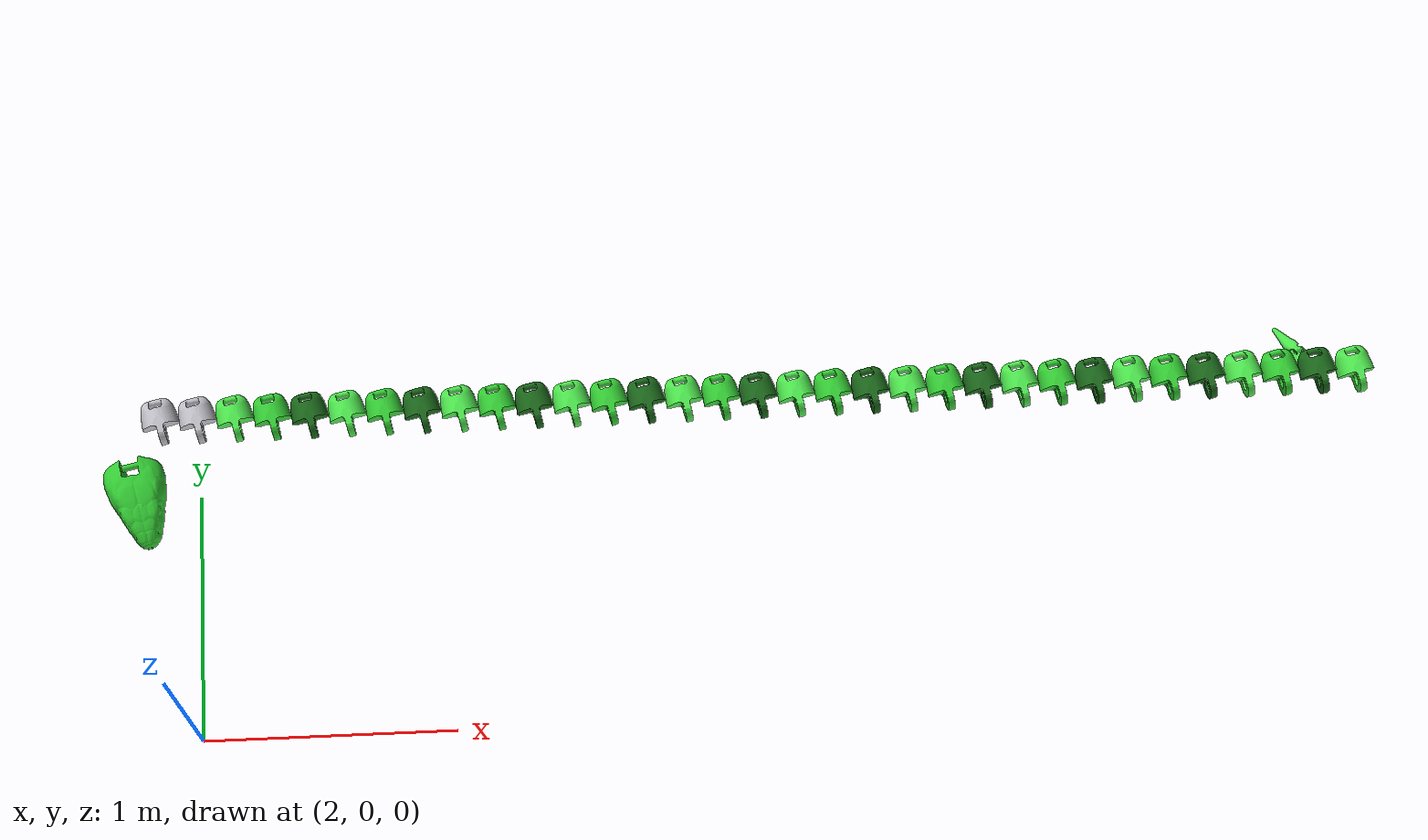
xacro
<?xml version="1.0"?>
<robot xmlns:xacro="http://www.ros.org/wiki/xacro" name="snake_robot">

  <!-- ===== Include Materials ===== -->
  <xacro:include filename="$(find snake_robot)/urdf/materials.xacro"/>

  <!-- ===== Dummy Root Link ===== -->
  <link name="world"/>

  <!-- ===== Base Link ===== -->
  <link name="base_link">
    <inertial>
      <origin xyz="0 0 0" rpy="0 0 0"/>
      <mass value="2.0"/>
      <inertia ixx="0.01" iyy="0.01" izz="0.01" ixy="0.0" ixz="0.0" iyz="0.0"/>
    </inertial>
    <visual>
      <geometry>
        <mesh filename="file://$(find snake_robot)/meshes/base_link.stl" scale="0.001 0.001 0.001"/>
      </geometry>
      <material name="snake_green"/>
    </visual>
    <collision>
      <geometry>
        <mesh filename="file://$(find snake_robot)/meshes/base_link.stl" scale="0.001 0.001 0.001"/>
      </geometry>
    </collision>
  </link>

  <joint name="world_joint" type="fixed">
    <parent link="world"/>
    <child link="base_link"/>
  </joint>

  <!-- ===== Snake Segments ===== -->
  <!-- Link 1 -->
  <link name="link1">
    <inertial>
      <origin xyz="0 0 0" rpy="0 0 0"/>
      <mass value="1.0"/>
      <inertia ixx="0.005" iyy="0.005" izz="0.005" ixy="0.0" ixz="0.0" iyz="0.0"/>
    </inertial>
    <visual>
      <geometry>
        <mesh filename="file://$(find snake_robot)/meshes/02_1.stl" scale="0.001 0.001 0.001"/>
      </geometry>
      <material name="silver"/>
    </visual>
    <collision>
      <geometry>
        <mesh filename="file://$(find snake_robot)/meshes/02_1.stl" scale="0.001 0.001 0.001"/>
      </geometry>
    </collision>
  </link>

  <joint name="joint1" type="revolute">
    <parent link="base_link"/>
    <child link="link1"/>
    <origin xyz="0.15 0 0" rpy="0 0 0"/>
    <axis xyz="0 0 1"/>
    <limit effort="10" velocity="2.0" lower="-1.57" upper="1.57"/>
    <dynamics damping="0.5" friction="0.1"/>
    <safety_controller k_position="100" k_velocity="10" soft_lower_limit="-1.5" soft_upper_limit="1.5"/>
  </joint>

  <!-- Link 2 -->
  <link name="link2">
    <inertial>
      <origin xyz="0 0 0" rpy="0 0 0"/>
      <mass value="1.0"/>
      <inertia ixx="0.005" iyy="0.005" izz="0.005" ixy="0.0" ixz="0.0" iyz="0.0"/>
    </inertial>
    <visual>
      <geometry>
        <mesh filename="file://$(find snake_robot)/meshes/02_1.stl" scale="0.001 0.001 0.001"/>
      </geometry>
      <material name="silver"/>
    </visual>
    <collision>
      <geometry>
        <mesh filename="file://$(find snake_robot)/meshes/02_1.stl" scale="0.001 0.001 0.001"/>
      </geometry>
    </collision>
  </link>

  <joint name="joint2" type="revolute">
    <parent link="link1"/>
    <child link="link2"/>
    <origin xyz="0.15 0 0" rpy="0 0 0"/>
    <axis xyz="0 0 1"/>
    <limit effort="10" velocity="2.0" lower="-1.57" upper="1.57"/>
    <dynamics damping="0.5" friction="0.1"/>
    <safety_controller k_position="100" k_velocity="10" soft_lower_limit="-1.5" soft_upper_limit="1.5"/>
  </joint>

  <!-- Remaining segments -->
  <xacro:macro name="snake_segment" params="n">
    <link name="link${n}">
      <inertial>
        <origin xyz="0 0 0" rpy="0 0 0"/>
        <mass value="1.0"/>
        <inertia ixx="0.005" iyy="0.005" izz="0.005" ixy="0.0" ixz="0.0" iyz="0.0"/>
      </inertial>
      <visual>
        <geometry>
          <mesh filename="file://$(find snake_robot)/meshes/02_1.stl" scale="0.001 0.001 0.001"/>
        </geometry>
        <xacro:if value="${n % 3 == 0}">
          <material name="snake_pattern"/>
        </xacro:if>
        <xacro:if value="${n % 3 == 1}">
          <material name="snake_green"/>
        </xacro:if>
        <xacro:if value="${n % 3 == 2}">
          <material name="snake_dark"/>
        </xacro:if>
      </visual>
      <collision>
        <geometry>
          <mesh filename="file://$(find snake_robot)/meshes/02_1.stl" scale="0.001 0.001 0.001"/>
        </geometry>
      </collision>
    </link>

    <joint name="joint${n}" type="revolute">
      <parent link="link${n - 1}"/>
      <child link="link${n}"/>
      <origin xyz="0.15 0 0" rpy="0 0 0"/>
      <axis xyz="0 0 1"/>
      <limit effort="10" velocity="2.0" lower="-1.57" upper="1.57"/>
      <dynamics damping="0.5" friction="0.1"/>
      <safety_controller k_position="100" k_velocity="10" soft_lower_limit="-1.5" soft_upper_limit="1.5"/>
    </joint>
  </xacro:macro>

  <!-- Generate segments 3 through 33 -->
  <xacro:snake_segment n="3"/>
  <xacro:snake_segment n="4"/>
  <xacro:snake_segment n="5"/>
  <xacro:snake_segment n="6"/>
  <xacro:snake_segment n="7"/>
  <xacro:snake_segment n="8"/>
  <xacro:snake_segment n="9"/>
  <xacro:snake_segment n="10"/>
  <xacro:snake_segment n="11"/>
  <xacro:snake_segment n="12"/>
  <xacro:snake_segment n="13"/>
  <xacro:snake_segment n="14"/>
  <xacro:snake_segment n="15"/>
  <xacro:snake_segment n="16"/>
  <xacro:snake_segment n="17"/>
  <xacro:snake_segment n="18"/>
  <xacro:snake_segment n="19"/>
  <xacro:snake_segment n="20"/>
  <xacro:snake_segment n="21"/>
  <xacro:snake_segment n="22"/>
  <xacro:snake_segment n="23"/>
  <xacro:snake_segment n="24"/>
  <xacro:snake_segment n="25"/>
  <xacro:snake_segment n="26"/>
  <xacro:snake_segment n="27"/>
  <xacro:snake_segment n="28"/>
  <xacro:snake_segment n="29"/>
  <xacro:snake_segment n="30"/>
  <xacro:snake_segment n="31"/>
  <xacro:snake_segment n="32"/>
  <xacro:snake_segment n="33"/>

  <!-- ===== Tail Segment ===== -->
  <link name="tail_link">
    <inertial>
      <origin xyz="0 0 0" rpy="0 0 0"/>
      <mass value="0.5"/>
      <inertia ixx="0.001" iyy="0.001" izz="0.001" ixy="0.0" ixz="0.0" iyz="0.0"/>
    </inertial>
    <visual>
      <geometry>
        <mesh filename="file://$(find snake_robot)/meshes/tail_1.stl" scale="0.001 0.001 0.001"/>
      </geometry>
      <material name="snake_pattern"/>
    </visual>
    <collision>
      <geometry>
        <mesh filename="file://$(find snake_robot)/meshes/tail_1.stl" scale="0.001 0.001 0.001"/>
      </geometry>
    </collision>
  </link>

  <joint name="joint34" type="fixed">
    <parent link="link33"/>
    <child link="tail_link"/>
    <origin xyz="0.15 0 0" rpy="0 0 0"/>
  </joint>

  <!-- ===== ROS2 Control Configuration ===== -->
  <ros2_control name="SnakeRobotSystem" type="system">
    <hardware>
      <plugin>gazebo_ros2_control/GazeboSystem</plugin>
    </hardware>

    <!-- Define command and state interfaces for all joints -->
    <joint name="joint1">
      <command_interface name="position"/>
      <state_interface name="position"/>
      <state_interface name="velocity"/>
      <state_interface name="effort"/>
      <param name="min">-1.57</param>
      <param name="max">1.57</param>
    </joint>

    <joint name="joint2">
      <command_interface name="position"/>
      <state_interface name="position"/>
      <state_interface name="velocity"/>
      <state_interface name="effort"/>
      <param name="min">-1.57</param>
      <param name="max">1.57</param>
    </joint>

    <xacro:macro name="snake_joint_control" params="n">
      <joint name="joint${n}">
        <command_interface name="position"/>
        <state_interface name="position"/>
        <state_interface name="velocity"/>
        <state_interface name="effort"/>
        <param name="min">-1.57</param>
        <param name="max">1.57</param>
      </joint>
    </xacro:macro>

    <xacro:snake_joint_control n="3"/>
    <xacro:snake_joint_control n="4"/>
    <xacro:snake_joint_control n="5"/>
    <xacro:snake_joint_control n="6"/>
    <xacro:snake_joint_control n="7"/>
    <xacro:snake_joint_control n="8"/>
    <xacro:snake_joint_control n="9"/>
    <xacro:snake_joint_control n="10"/>
    <xacro:snake_joint_control n="11"/>
    <xacro:snake_joint_control n="12"/>
    <xacro:snake_joint_control n="13"/>
    <xacro:snake_joint_control n="14"/>
    <xacro:snake_joint_control n="15"/>
    <xacro:snake_joint_control n="16"/>
    <xacro:snake_joint_control n="17"/>
    <xacro:snake_joint_control n="18"/>
    <xacro:snake_joint_control n="19"/>
    <xacro:snake_joint_control n="20"/>
    <xacro:snake_joint_control n="21"/>
    <xacro:snake_joint_control n="22"/>
    <xacro:snake_joint_control n="23"/>
    <xacro:snake_joint_control n="24"/>
    <xacro:snake_joint_control n="25"/>
    <xacro:snake_joint_control n="26"/>
    <xacro:snake_joint_control n="27"/>
    <xacro:snake_joint_control n="28"/>
    <xacro:snake_joint_control n="29"/>
    <xacro:snake_joint_control n="30"/>
    <xacro:snake_joint_control n="31"/>
    <xacro:snake_joint_control n="32"/>
    <xacro:snake_joint_control n="33"/>
  </ros2_control>

  <!-- ===== Gazebo ROS2 Control Plugin ===== -->
  <gazebo>
    <plugin name="gazebo_ros2_control" filename="libgazebo_ros2_control.so">
      <parameters>$(find snake_robot)/config/ros2_controllers.yaml</parameters>
    </plugin>
  </gazebo>

</robot>

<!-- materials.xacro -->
<robot name="snake" xmlns:xacro="http://www.ros.org/wiki/xacro" >

<material name="snake_green">
  <color rgba="0.2 0.8 0.2 1.000"/>
</material>

<material name="snake_dark">
  <color rgba="0.1 0.4 0.1 1.000"/>
</material>

<material name="snake_pattern">
  <color rgba="0.3 0.9 0.3 1.000"/>
</material>

</robot>
